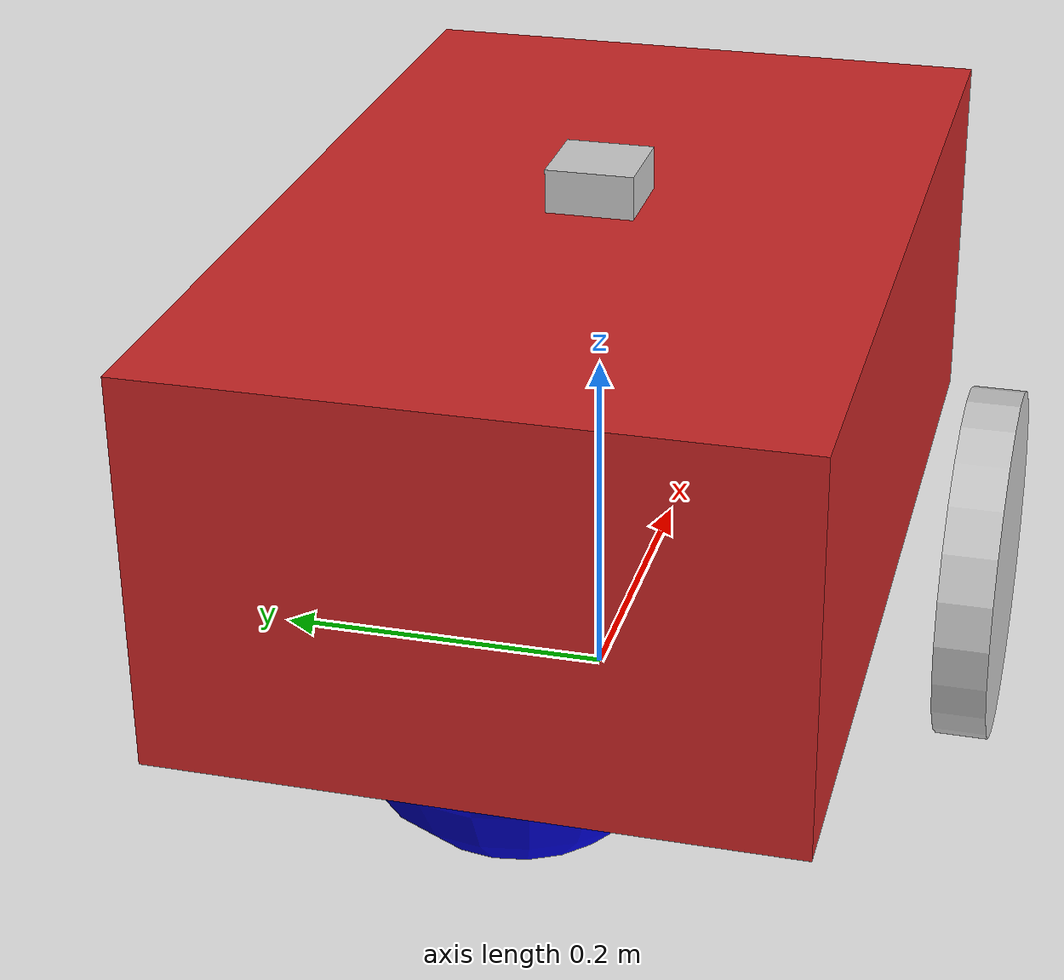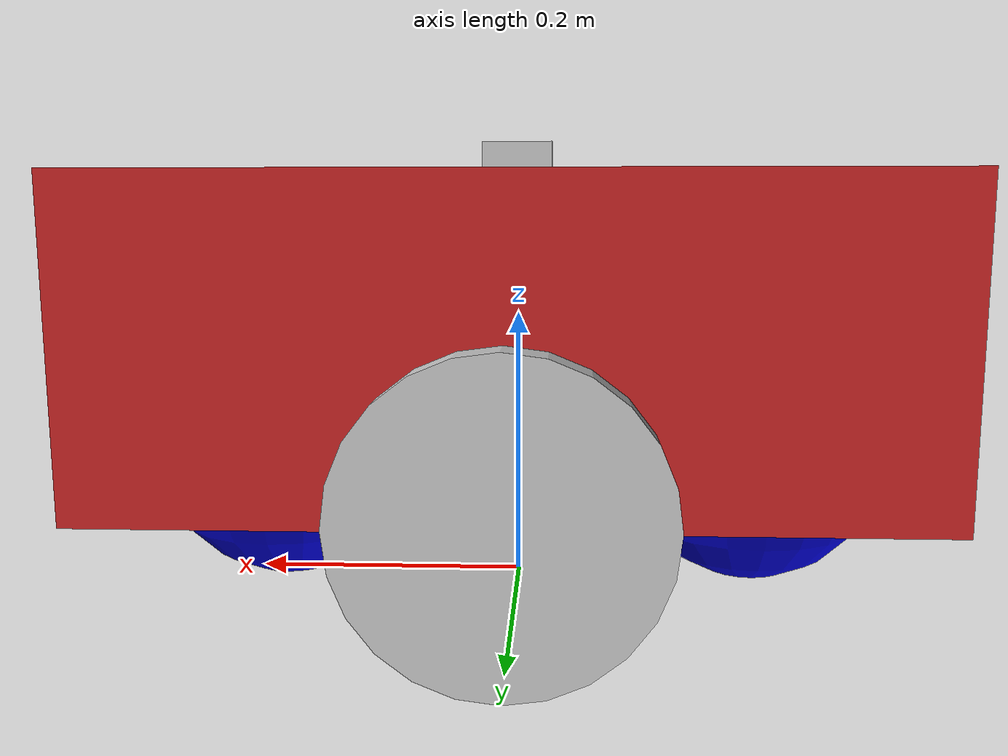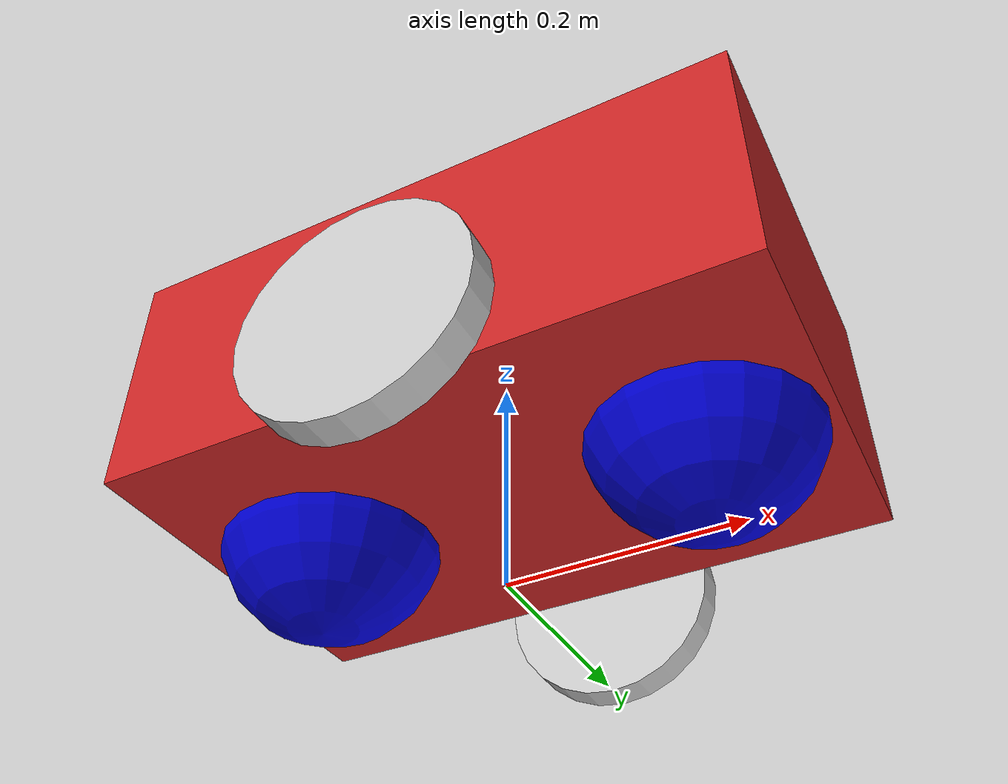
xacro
<?xml version="1.0" ?>
<robot name="bunker1" xmlns:xacro="http://ros.org/wiki/xacro">
    <xacro:arg name="namespace" default=""/>
    <xacro:include filename="inertial.xacro"/>
    <xacro:include filename="material.xacro"/>
    <xacro:include filename="macro-roue.xacro"/>
    <xacro:include filename="macro-imu.xacro"/>
    <xacro:include filename="macro-gps2.xacro"/>
    <xacro:include filename="macro-camera-perception.xacro"/>

    <xacro:property name="base_width" value="0.350"/>
    <xacro:property name="base_length" value="0.560"/>
    <xacro:property name="base_height" value="0.22"/>
    <xacro:property name="sol_height" value="0.08"/>

    <xacro:property name="wheel_radius" value="0.10"/>
    <xacro:property name="wheel_width" value="0.03"/>
    <xacro:property name="wheel_ygap" value="${base_width*0.6+wheel_width/2.0}"/>
<!-- position des roues -->
    <xacro:property name="x1" value="${wheel_radius*0.9}"/>
    <xacro:property name="x2" value="${wheel_radius*1.85}"/>
    <xacro:property name="x3" value="0.254"/>
    <xacro:property name="x4" value="0.300"/>
    <xacro:property name="x5" value="0.242"/>

    <link name="$(arg namespace)/base_link">
        <origin xyz="0 0 0.5" rpy="0 0 0"/>
    </link>
    <link name="$(arg namespace)/base_footprint">
    </link>
    <joint name="$(arg namespace)/base_footprint_joint" type="fixed">
        <parent link="$(arg namespace)/base_link"/>
        <child link="$(arg namespace)/base_footprint" />
        <origin xyz="0 0 0" rpy="0 0 0"/>
    </joint>

    <joint name="$(arg namespace)/corps_joint" type="fixed">
        <parent link="$(arg namespace)/base_link"/>
        <child link="$(arg namespace)/corps_link" />
        <origin xyz="0 0 ${base_height/2+sol_height}" rpy="0 0 0"/>
    </joint>

    <link name="$(arg namespace)/corps_link">
        <visual>
            <origin xyz="0 0 0" rpy="0 0 0"/>
            <geometry>
                <box size="${base_length} ${base_width}  ${base_height}"/>
            </geometry>

        </visual>

        <collision>
            <geometry>
                <box size="${base_length} ${base_width}  ${base_height}"/>
            </geometry>
        </collision>

        <xacro:box_inertia m="50.0" d="${base_width}" w="${base_length}" h="${base_height}"/>
    </link>

<!-- LEFT TRACK  -->
    <link name='$(arg namespace)/left_track'>
        <origin xyz="0 0.2 0" rpy="0 0 0"/>
        <xacro:box_inertia m="1.0" w="${base_width}" d="${base_length}" h="${base_height}"/>

    </link>

    <joint name='$(arg namespace)/left_track_j' type='revolute'>
        <child link="$(arg namespace)/left_track"/>
        <parent link="$(arg namespace)/base_link"/>
        <axis xyz="0 1 0"/>
        <limit lower="0" upper="0" effort="0" velocity="4"/>
    </joint>
<!-- RIGHT TRACK  -->
    <link name='$(arg namespace)/right_track'>
        <origin xyz="0 -0.2 0" rpy="0 0 0"/>
            <xacro:box_inertia m="1.0" w="${base_width}" d="${base_length}" h="${base_height}"/>

    </link>
    <joint name='$(arg namespace)/right_track_j' type='revolute'>
        <child link="$(arg namespace)/right_track"/>
        <parent link="$(arg namespace)/base_link"/>
        <axis xyz="0 1 0"/>
        <limit lower="0" upper="0" effort="0" velocity="4"/>
        <use_parent_model_frame>1</use_parent_model_frame>
    </joint>

<!-- LEFT WHEELs -->

<xacro:roue suffix="left" num="0" xx="0" zz="0" sign=""/>

<!-- RIGHT WHEELs -->
<xacro:roue suffix="right" num="0" xx="0" zz="0" sign="-"/>

    <joint name="caster_wheel_joint1" type="fixed">
        <parent link="$(arg namespace)/base_link"/>
        <child link="caster_wheel1"/>
        <origin xyz="-${base_width/2.0} 0 ${wheel_radius}" rpy="0 0 0"/>
    </joint>

    <link name="caster_wheel1">
        <visual>
            <geometry>
                <sphere radius="${wheel_radius}" />
            </geometry>
            <material name="blue"/>
        </visual>
        <collision>
            <geometry>
                <sphere radius="${wheel_radius}" />
            </geometry>
        </collision>
    </link>
    <joint name="caster_wheel_joint2" type="fixed">
        <parent link="$(arg namespace)/base_link"/>
        <child link="caster_wheel2"/>
        <origin xyz="${base_width/2.0} 0 ${wheel_radius}" rpy="0 0 0"/>
    </joint>

    <link name="caster_wheel2">
        <visual>
            <geometry>
                <sphere radius="${wheel_radius}" />
            </geometry>
            <material name="blue"/>
        </visual>
        <collision>
            <geometry>
                <sphere radius="${wheel_radius}" />
            </geometry>
        </collision>
    </link>

<!-- IMU -->
<xacro:myimu xyz="0 0 ${sol_height+base_height}" rpy="0 0 0"/>

<!-- GPS -->

<!-- CAM -->
<xacro:camera num="1" xyz="0.0 0.0 0.3" rpy="0 0 0"/>

<!-- pour republier les angles de roues -->
<gazebo>

    <plugin name="wheel_drive_controller" filename="libgazebo_ros_diff_drive.so">

    <!-- wheels -->
    <num_wheel_pairs>1</num_wheel_pairs>
                <left_joint>$(arg namespace)/left_wheel_joint_0</left_joint>
                <right_joint>$(arg namespace)/right_wheel_joint_0</right_joint>

    <!-- kinematics -->
    <wheel_separation>${wheel_ygap*2.0}</wheel_separation>
    <wheel_diameter>${wheel_radius*2.0}</wheel_diameter>
    <max_wheel_torque>20000.0</max_wheel_torque>
    <max_wheel_acceleration>10.0</max_wheel_acceleration>

    <!-- odometry  -->
    <odometry_frame>$(arg namespace)/odom</odometry_frame>
    <robot_base_frame>$(arg namespace)/base_link</robot_base_frame>

    <publish_odom>true</publish_odom>
    <publish_odom_tf>true</publish_odom_tf>
    <update_rate>100.0</update_rate>
    </plugin>

</gazebo>

<gazebo reference="$(arg namespace)/corps_link">

    <material>Gazebo/Red</material>
  </gazebo>

</robot>

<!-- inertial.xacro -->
<robot  xmlns:xacro="http://ros.org/wiki/xacro">

    <!-- Define intertial property macros  -->
    <xacro:macro name="box_inertia" params="m w h d">
        <inertial>
            <origin xyz="0 0 0" rpy="1.57 0 1.57"/>
            <mass value="${m}"/>
            <inertia ixx="${(m/12) * (h*h + d*d)}" ixy="0.0" ixz="0.0" iyy="${(m/12) * (w*w + d*d)}" iyz="0.0" izz="${(m/12) * (w*w + h*h)}"/>
        </inertial>
    </xacro:macro>

    <xacro:macro name="cylinder_inertia" params="m r h">
        <inertial>
            <origin xyz="0 0 0" rpy="1.57 0 0" />
            <mass value="${m}"/>
            <inertia ixx="${(m/12) * (3*r*r + h*h)}" ixy = "0" ixz = "0" iyy="${(m/12) * (3*r*r + h*h)}" iyz = "0" izz="${(m/2) * (r*r)}"/>
        </inertial>
    </xacro:macro>

    <xacro:macro name="sphere_inertia" params="m r">
        <inertial>
            <mass value="${m}"/>
            <inertia ixx="${(2/5) * m * (r*r)}" ixy="0.0" ixz="0.0" iyy="${(2/5) * m * (r*r)}" iyz="0.0" izz="${(2/5) * m * (r*r)}"/>
        </inertial>
    </xacro:macro>

    <xacro:macro name="mixyz" params="m ixx ixy ixz iyy iyz izz">
        <inertial>
            <mass value="${m}"/>
            <inertia ixx="${ixx}" ixy="${ixy}" ixz="${ixz}" iyy="${iyy}" iyz="${iyz}" izz="${izz}"/>
        </inertial>
    </xacro:macro>

</robot>

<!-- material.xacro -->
<robot  xmlns:xacro="http://ros.org/wiki/xacro">
    <material name="black">
        <color rgba="0 0 0 0"/>
    </material>
    <material name="blue">
        <color rgba="0 0 0.8 1"/>
    </material>
    <material name="red">
        <color rgba="1.0 0 0 1"/>
    </material>
    <material name="green">
        <color rgba="0 0.8 0 1"/>
    </material>
    <material name="white">
        <color rgba="0.8 0.8 0.8 1"/>
    </material>
</robot>

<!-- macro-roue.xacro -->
<robot  xmlns:xacro="http://ros.org/wiki/xacro">

<xacro:macro name="roue" params="suffix num xx zz sign">
   <link name="$(arg namespace)/${suffix}_wheel_link_${num}">
      <visual>
        <origin xyz="0 0 0" rpy="${pi/2} 0 0"/>
        <geometry>
            <cylinder radius="${wheel_radius}" length="${wheel_width}"/>
        </geometry>
        <material name="white"/>
      </visual>

      <collision>
        <origin xyz="0 0 0" rpy="${pi/2} 0 0"/>
        <geometry>
           <cylinder radius="${wheel_radius}" length="${wheel_width}"/>
        </geometry>
      </collision>

      <xacro:cylinder_inertia m="100" r="${wheel_radius}" h="${wheel_width}"/>
    </link>

    <joint name="$(arg namespace)/${suffix}_wheel_joint_${num}" type="continuous">
        <parent link="$(arg namespace)/${suffix}_track"/>
        <child link="$(arg namespace)/${suffix}_wheel_link_${num}"/>
        <origin xyz="${xx} ${sign}${wheel_ygap} ${wheel_radius+zz}" rpy="0 0 0"/>
        <limit effort="0" velocity="1.0"/>
        <axis xyz="0 1 0"/>
    </joint>

    <gazebo reference="$(arg namespace)/${suffix}_wheel_link_${num}">
      <mu1>10</mu1>
      <mu2>10</mu2>
    <material>Gazebo/Black</material>
  </gazebo>

</xacro:macro>

</robot>

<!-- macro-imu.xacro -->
<robot  xmlns:xacro="http://ros.org/wiki/xacro">

<xacro:macro name="myimu" params="xyz rpy">
<link name="$(arg namespace)/imu_link">
  <visual>
    <origin xyz="0 0 0 " rpy="0 0 0"/>
    <geometry>
        <box size="0.02 0.02 0.01"/>
    </geometry>
  </visual>
</link>

<joint name="$(arg namespace)/imu_joint" type="fixed">
    <parent link="$(arg namespace)/base_link"/>
    <child link="$(arg namespace)/imu_link"/>
    <origin xyz="${xyz}" rpy="${rpy}"/>
</joint>

<gazebo reference="$(arg namespace)/imu_link">
    <gravity>true</gravity>
    <sensor name="imu_sensor" type="imu">
      <always_on>true</always_on>
      <update_rate>100</update_rate>
      <visualize>true</visualize>
      <plugin filename="libgazebo_ros_imu_sensor.so" name="imu_plugin">
        <topicName>imu</topicName>
        <bodyName>imu_link</bodyName>
        <updateRateHZ>10.0</updateRateHZ>
        <gaussianNoise>0.0</gaussianNoise>
        <xyzOffset>0 0 0</xyzOffset>
        <rpyOffset>0 0 0</rpyOffset>
        <frameName>imu_link</frameName>
        <initialOrientationAsReference>false</initialOrientationAsReference>
        <remapping>imu_plugin/out:=imu_data</remapping>
      </plugin>
    </sensor>
  </gazebo>

</xacro:macro>
</robot>

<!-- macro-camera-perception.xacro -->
<robot  xmlns:xacro="http://ros.org/wiki/xacro">

<xacro:macro name="camera" params="num xyz rpy">
   <link name="$(arg namespace)/camera_link_${num}">
      <visual>
        <origin xyz="0 0 0" rpy="${pi/2} 0 0"/>
        <geometry>
            <box size="0.05 0.05 0.05" />
        </geometry>
        <material name="white"/>
      </visual>
    </link>

    <joint name="$(arg namespace)/camera_joint_${num}" type="fixed">
        <parent link="$(arg namespace)/base_link"/>
        <child link="$(arg namespace)/camera_link_${num}"/>
        <origin xyz="${xyz}" rpy="${rpy}"/>

    </joint>
    <gazebo reference="$(arg namespace)/camera_link_${num}">
        <sensor type="camera" name="camera_${num}">
            <update_rate>10</update_rate>
            <visualize>true</visualize>
            <camera name="cam_${num}">
                <horizontal_fov>1.4</horizontal_fov>
                <image>
                    <width>1280</width>
                    <height>960</height>
                    <format>B8G8R8</format>
                </image>
                <clip>
                    <near>0.02</near>
                    <far>5</far>
                </clip>
                <noise>
                    <type>gaussian</type>
                    <mean>0.0</mean>
                    <stddev>0.007</stddev>
                </noise>
            </camera>
            <plugin name="camera_controller" filename="libgazebo_ros_camera.so">
                <frame_name>$(arg namespace)/camera_link_${num}</frame_name>
            </plugin>
        </sensor>
    </gazebo>

</xacro:macro>

</robot>
